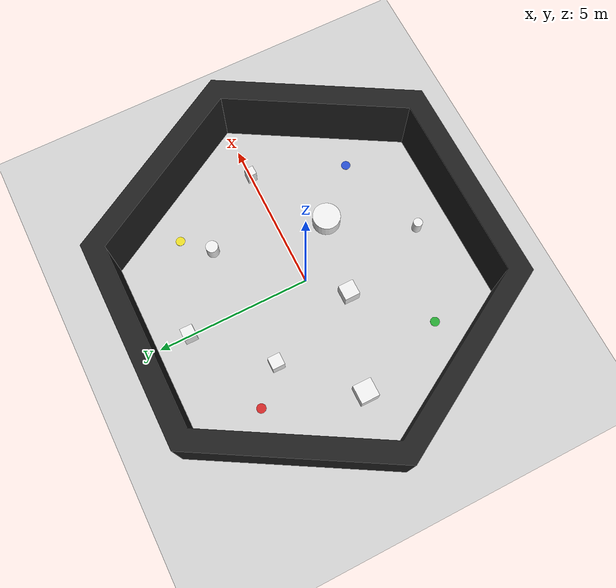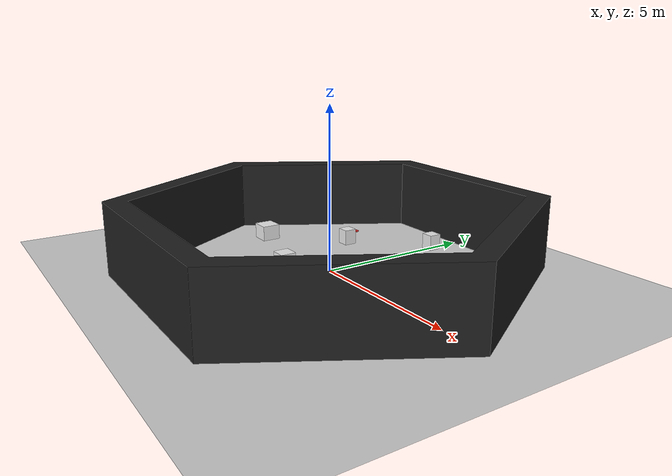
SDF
<sdf version='1.4'>
  <world name='default'>
    <!-- A global light source -->
    <include>
      <uri>model://sun</uri>
    </include>

    <!-- A ground plane -->
    <include>
      <uri>model://ground_plane</uri>
    </include>

    <physics type="ode">
      <real_time_update_rate>1000.0</real_time_update_rate>
      <max_step_size>0.001</max_step_size>
      <real_time_factor>1</real_time_factor>
      <ode>
        <solver>
          <type>quick</type>
          <iters>150</iters>
          <precon_iters>0</precon_iters>
          <sor>1.400000</sor>
          <use_dynamic_moi_rescaling>1</use_dynamic_moi_rescaling>
        </solver>
        <constraints>
          <cfm>0.00001</cfm>
          <erp>0.2</erp>
          <contact_max_correcting_vel>2000.000000</contact_max_correcting_vel>
          <contact_surface_layer>0.01000</contact_surface_layer>
        </constraints>
      </ode>
    </physics>

    <!-- Load world -->
    <include>
      <uri>model://turtlebot3_master_world1</uri>
    </include>

    <scene>
      <ambient>1 1 1 1</ambient>
      <background>1 1 1 1</background>
      <shadows>true</shadows>
    </scene>

    <gui fullscreen='0'>
      <camera name='user_camera'>
        <pose>0.8 0.0 12.0 0 1.5708 0</pose>
        <view_controller>orbit</view_controller>
      </camera>
    </gui>
  </world>
</sdf>

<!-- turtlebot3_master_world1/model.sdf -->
<sdf version='1.5'>
    <!-- Draw Circle -->
    <model name='ros_symbol'>
      <static>1</static>
      <link name='symbol'>

	<!-- Obstacles to enable SLAM-->
	<collision name='slam_one'>
          <pose>-1 -1 0.25 0 0 0</pose>
          <geometry>
            <box>
            <size>0.5 0.5 0.5</size>
          </box>
          </geometry>
          <max_contacts>10</max_contacts>
          <surface>
            <bounce/>
            <friction>
              <ode/>
            </friction>
            <contact>
              <ode/>
            </contact>
          </surface>
        </collision>

        <visual name='slam_one'>
          <pose>-1 -1 0.25 0 0 0</pose>
          <geometry>
            <box>
            <size>0.5 0.5 0.5</size>
          </box>
          </geometry>
          <material>
            <script>
              <uri>file://media/materials/scripts/gazebo.material</uri>
              <name>Gazebo/White</name>
            </script>
          </material>
        </visual>

	<collision name='slam_two'>
          <pose>-2 2 0.25 0 0 0</pose>
          <geometry>
             <box>
            <size>0.4 0.4 0.5</size>
          </box>
          </geometry>
          <max_contacts>10</max_contacts>
          <surface>
            <bounce/>
            <friction>
              <ode/>
            </friction>
            <contact>
              <ode/>
            </contact>
          </surface>
        </collision>

        <visual name='slam_two'>
          <pose>-2 2 0.25 0 0 0</pose>
          <geometry>
              <box>
            <size>0.4 0.4 0.5</size>
          </box>
          </geometry>
          <material>
            <script>
              <uri>file://media/materials/scripts/gazebo.material</uri>
              <name>Gazebo/White</name>
            </script>
          </material>
        </visual>

	<collision name='slam_three'>
          <pose>1.5 -1.5 0.25 0 0 0</pose>
          <geometry>
            <cylinder>
              <radius>0.45</radius>
              <length>0.5</length>
            </cylinder>
          </geometry>
          <max_contacts>10</max_contacts>
          <surface>
            <bounce/>
            <friction>
              <ode/>
            </friction>
            <contact>
              <ode/>
            </contact>
          </surface>
        </collision>

        <visual name='slam_three'>
          <pose>1.5 -1.5 0.25 0 0 0</pose>
          <geometry>
            <cylinder>
              <radius>0.45</radius>
              <length>0.5</length>
            </cylinder>
          </geometry>
          <material>
            <script>
              <uri>file://media/materials/scripts/gazebo.material</uri>
              <name>Gazebo/White</name>
            </script>
          </material>
        </visual>

	<collision name='slam_four'>
          <pose>2.2 2.2 0.25 0 0 0</pose>
          <geometry>
            <cylinder>
              <radius>0.2</radius>
              <length>0.5</length>
            </cylinder>
          </geometry>
          <max_contacts>10</max_contacts>
          <surface>
            <bounce/>
            <friction>
              <ode/>
            </friction>
            <contact>
              <ode/>
            </contact>
          </surface>
        </collision>

        <visual name='slam_four'>
          <pose>2.2 2.2 0.25 0 0 0</pose>
          <geometry>
            <cylinder>
              <radius>0.2</radius>
              <length>0.5</length>
            </cylinder>
          </geometry>
          <material>
            <script>
              <uri>file://media/materials/scripts/gazebo.material</uri>
              <name>Gazebo/White</name>
            </script>
          </material>
        </visual>

	<collision name='slam_five'>
          <pose>4 0 0.25 0 0 0</pose>
          <geometry>
              <box>
            <size>0.3 0.3 0.5</size>
          </box>
          </geometry>
          <max_contacts>10</max_contacts>
          <surface>
            <bounce/>
            <friction>
              <ode/>
            </friction>
            <contact>
              <ode/>
            </contact>
          </surface>
        </collision>

        <visual name='slam_five'>
          <pose>4 0 0.25 0 0 0</pose>
          <geometry>
              <box>
            <size>0.3 0.3 0.5</size>
          </box>
          </geometry>
          <material>
            <script>
              <uri>file://media/materials/scripts/gazebo.material</uri>
              <name>Gazebo/White</name>
            </script>
          </material>
        </visual>

	<collision name='slam_six'>
          <pose>-4 0 0.25 0 0 0</pose>
          <geometry>
              <box>
            <size>0.6 0.6 0.5</size>
          </box>
          </geometry>
          <max_contacts>10</max_contacts>
          <surface>
            <bounce/>
            <friction>
              <ode/>
            </friction>
            <contact>
              <ode/>
            </contact>
          </surface>
        </collision>

        <visual name='slam_six'>
          <pose>-4 0 0.25 0 0 0</pose>
          <geometry>
              <box>
            <size>0.6 0.6 0.5</size>
          </box>
          </geometry>
          <material>
            <script>
              <uri>file://media/materials/scripts/gazebo.material</uri>
              <name>Gazebo/White</name>
            </script>
          </material>
        </visual>

	<collision name='slam_seven'>
          <pose>0 4 0.25 0 0 0</pose>
          <geometry>
              <box>
            <size>0.4 0.4 0.5</size>
          </box>
          </geometry>
          <max_contacts>10</max_contacts>
          <surface>
            <bounce/>
            <friction>
              <ode/>
            </friction>
            <contact>
              <ode/>
            </contact>
          </surface>
        </collision>

        <visual name='slam_seven'>
          <pose>0 4 0.25 0 0 0</pose>
          <geometry>
              <box>
            <size>0.4 0.4 0.5</size>
          </box>
          </geometry>
          <material>
            <script>
              <uri>file://media/materials/scripts/gazebo.material</uri>
              <name>Gazebo/White</name>
            </script>
          </material>
        </visual>

	<collision name='slam_eight'>
          <pose>0 -4 0.25 0 0 0</pose>
          <geometry>
            <cylinder>
              <radius>0.15</radius>
              <length>0.5</length>
            </cylinder>
          </geometry>
          <max_contacts>10</max_contacts>
          <surface>
            <bounce/>
            <friction>
              <ode/>
            </friction>
            <contact>
              <ode/>
            </contact>
          </surface>
        </collision>

        <visual name='slam_eight'>
          <pose>0 -4 0.25 0 0 0</pose>
          <geometry>
            <cylinder>
              <radius>0.15</radius>
              <length>0.5</length>
            </cylinder>
          </geometry>
          <material>
            <script>
              <uri>file://media/materials/scripts/gazebo.material</uri>
              <name>Gazebo/White</name>
            </script>
          </material>
        </visual>

	<!-- GOAL POINTS, Only visual-->
	<visual name='btm_right'>
          <pose>-3.0 -3.0 0.0 0 0 0</pose>
          <geometry>
            <cylinder>
              <radius>0.15</radius>
              <length>0.01</length>
            </cylinder>
          </geometry>
          <material>
            <script>
              <uri>file://media/materials/scripts/gazebo.material</uri>
              <name>Gazebo/Green</name>
            </script>
          </material>
        </visual>

	<visual name='btm_left'>
          <pose>-3.0 3.0 0.0 0 0 0</pose>
          <geometry>
            <cylinder>
              <radius>0.15</radius>
              <length>0.01</length>
            </cylinder>
          </geometry>
          <material>
            <script>
              <uri>file://media/materials/scripts/gazebo.material</uri>
              <name>Gazebo/Red</name>
            </script>
          </material>
        </visual>

<visual name='top_right'>
          <pose>3.0 -3.0 0.0 0 0 0</pose>
          <geometry>
            <cylinder>
              <radius>0.15</radius>
              <length>0.01</length>
            </cylinder>
          </geometry>
          <material>
            <script>
              <uri>file://media/materials/scripts/gazebo.material</uri>
              <name>Gazebo/Blue</name>
            </script>
          </material>
        </visual>

<visual name='top_left'>
          <pose>3.0 3.0 0.0 0 0 0</pose>
          <geometry>
            <cylinder>
              <radius>0.15</radius>
              <length>0.01</length>
            </cylinder>
          </geometry>
          <material>
            <script>
              <uri>file://media/materials/scripts/gazebo.material</uri>
              <name>Gazebo/Yellow</name>
            </script>
          </material>
        </visual>

        <!-- Draw Wall -->
        <collision name='body'>
        <pose>0 0 -0.3 0 0 -1.5708</pose>
        <geometry>
          <mesh>
            <uri>model://turtlebot3_world/meshes/wall.dae</uri>
            <scale>0.5 0.5 0.5</scale>
          </mesh>
        </geometry>
        <max_contacts>10</max_contacts>
        <surface>
          <bounce/>
          <friction>
            <ode/>
          </friction>
          <contact>
            <ode/>
          </contact>
        </surface>
      </collision>

      <visual name='body'>
        <pose>0 0 -0.3 0 0 -1.5708</pose>
        <geometry>
          <mesh>
            <uri>model://turtlebot3_world/meshes/wall.dae</uri>
            <scale>0.5 0.5 0.5</scale>
          </mesh>
        </geometry>
        <material>
          <script>
            <uri>file://media/materials/scripts/gazebo.material</uri>
            <name>Gazebo/Black</name>
          </script>
        </material>
      </visual>
    </link>
  </model>
</sdf>
